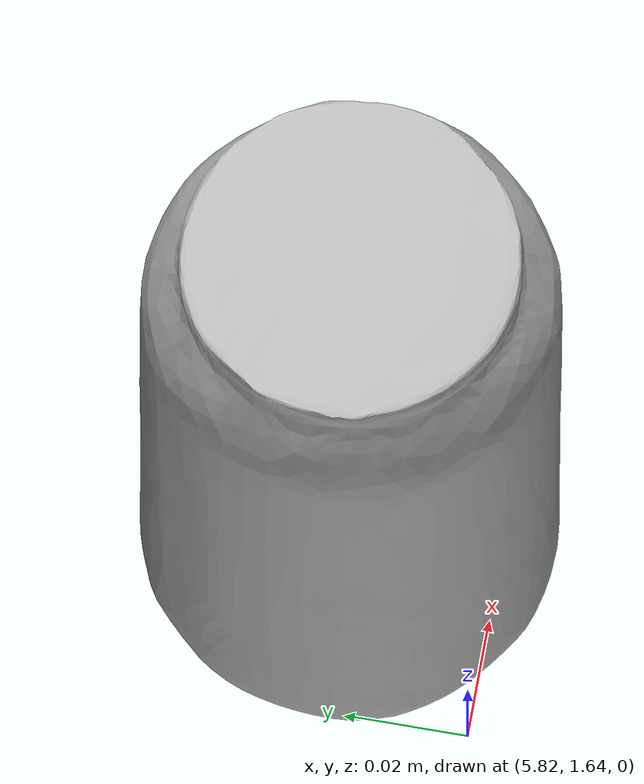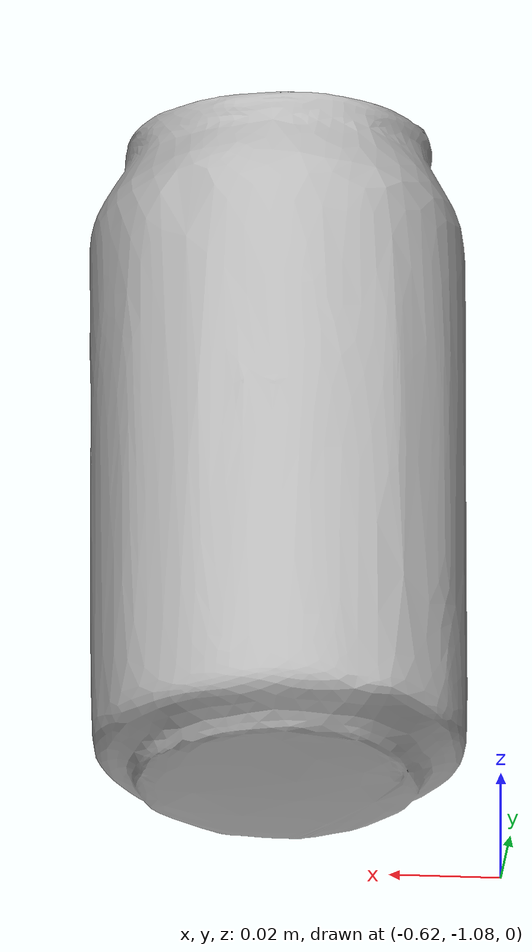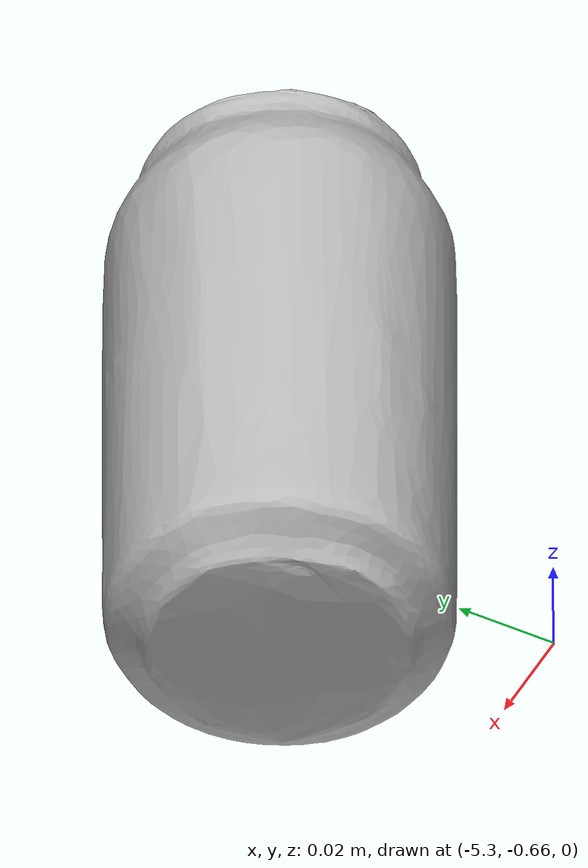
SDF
<?xml version='1.0'?>
<sdf version='1.7'>
  <model name='coke_can_house'>
    <model name='coke_can'>
      <link name='link'>
        <inertial>
          <pose>0 0 0.06 0 -0 0</pose>
          <mass>0.39</mass>
          <inertia>
            <ixx>0.00055575</ixx>
            <ixy>0</ixy>
            <ixz>0</ixz>
            <iyy>0.00055575</iyy>
            <iyz>0</iyz>
            <izz>0.0001755</izz>
          </inertia>
        </inertial>
        <collision name='collision'>
          <pose>0.003937 0.004724 -0.18 0 -0 0</pose>
          <geometry>
            <mesh>
              <uri>model://coke_can/meshes/coke_can.dae</uri>
            </mesh>
          </geometry>
          <surface>
            <friction>
              <ode>
                <mu>1</mu>
                <mu2>1</mu2>
              </ode>
            </friction>
            <contact>
              <ode>
                <kp>1e+07</kp>
                <kd>1</kd>
                <min_depth>0.001</min_depth>
                <max_vel>0.1</max_vel>
              </ode>
            </contact>
          </surface>
        </collision>
        <visual name='visual'>
          <pose>0.003937 0.004724 -0.18 0 -0 0</pose>
          <geometry>
            <mesh>
              <uri>model://coke_can/meshes/coke_can.dae</uri>
            </mesh>
          </geometry>
        </visual>
      </link>
      <pose>-0.577479 -1.04829 0 0 -0 0</pose>
    </model>
    <model name='coke_can_0'>
      <link name='link'>
        <inertial>
          <pose>0 0 0.06 0 -0 0</pose>
          <mass>0.39</mass>
          <inertia>
            <ixx>0.00055575</ixx>
            <ixy>0</ixy>
            <ixz>0</ixz>
            <iyy>0.00055575</iyy>
            <iyz>0</iyz>
            <izz>0.0001755</izz>
          </inertia>
        </inertial>
        <collision name='collision'>
          <pose>0.003937 0.004724 -0.18 0 -0 0</pose>
          <geometry>
            <mesh>
              <uri>model://coke_can/meshes/coke_can.dae</uri>
            </mesh>
          </geometry>
          <surface>
            <friction>
              <ode>
                <mu>1</mu>
                <mu2>1</mu2>
              </ode>
            </friction>
            <contact>
              <ode>
                <kp>1e+07</kp>
                <kd>1</kd>
                <min_depth>0.001</min_depth>
                <max_vel>0.1</max_vel>
              </ode>
            </contact>
          </surface>
        </collision>
        <visual name='visual'>
          <pose>0.003937 0.004724 -0.18 0 -0 0</pose>
          <geometry>
            <mesh>
              <uri>model://coke_can/meshes/coke_can.dae</uri>
            </mesh>
          </geometry>
        </visual>
      </link>
      <pose>-5.27084 -0.616285 0 0 -0 0</pose>
    </model>
    <model name='coke_can_1'>
      <link name='link'>
        <inertial>
          <pose>0 0 0.06 0 -0 0</pose>
          <mass>0.39</mass>
          <inertia>
            <ixx>0.00055575</ixx>
            <ixy>0</ixy>
            <ixz>0</ixz>
            <iyy>0.00055575</iyy>
            <iyz>0</iyz>
            <izz>0.0001755</izz>
          </inertia>
        </inertial>
        <collision name='collision'>
          <pose>0.003937 0.004724 -0.18 0 -0 0</pose>
          <geometry>
            <mesh>
              <uri>model://coke_can/meshes/coke_can.dae</uri>
            </mesh>
          </geometry>
          <surface>
            <friction>
              <ode>
                <mu>1</mu>
                <mu2>1</mu2>
              </ode>
            </friction>
            <contact>
              <ode>
                <kp>1e+07</kp>
                <kd>1</kd>
                <min_depth>0.001</min_depth>
                <max_vel>0.1</max_vel>
              </ode>
            </contact>
          </surface>
        </collision>
        <visual name='visual'>
          <pose>0.003937 0.004724 -0.18 0 -0 0</pose>
          <geometry>
            <mesh>
              <uri>model://coke_can/meshes/coke_can.dae</uri>
            </mesh>
          </geometry>
        </visual>
      </link>
      <pose>5.84832 1.66457 0 0 -0 0</pose>
    </model>
    <static>0</static>
    <allow_auto_disable>1</allow_auto_disable>
  </model>
</sdf>
